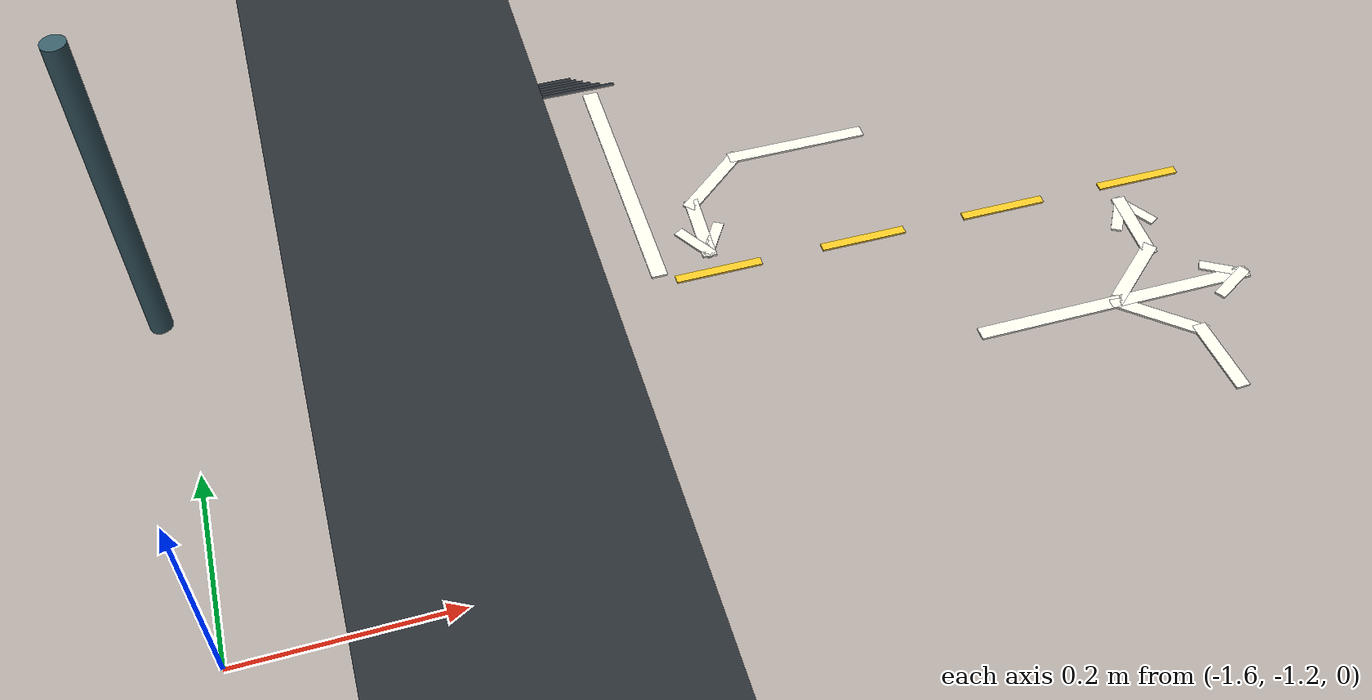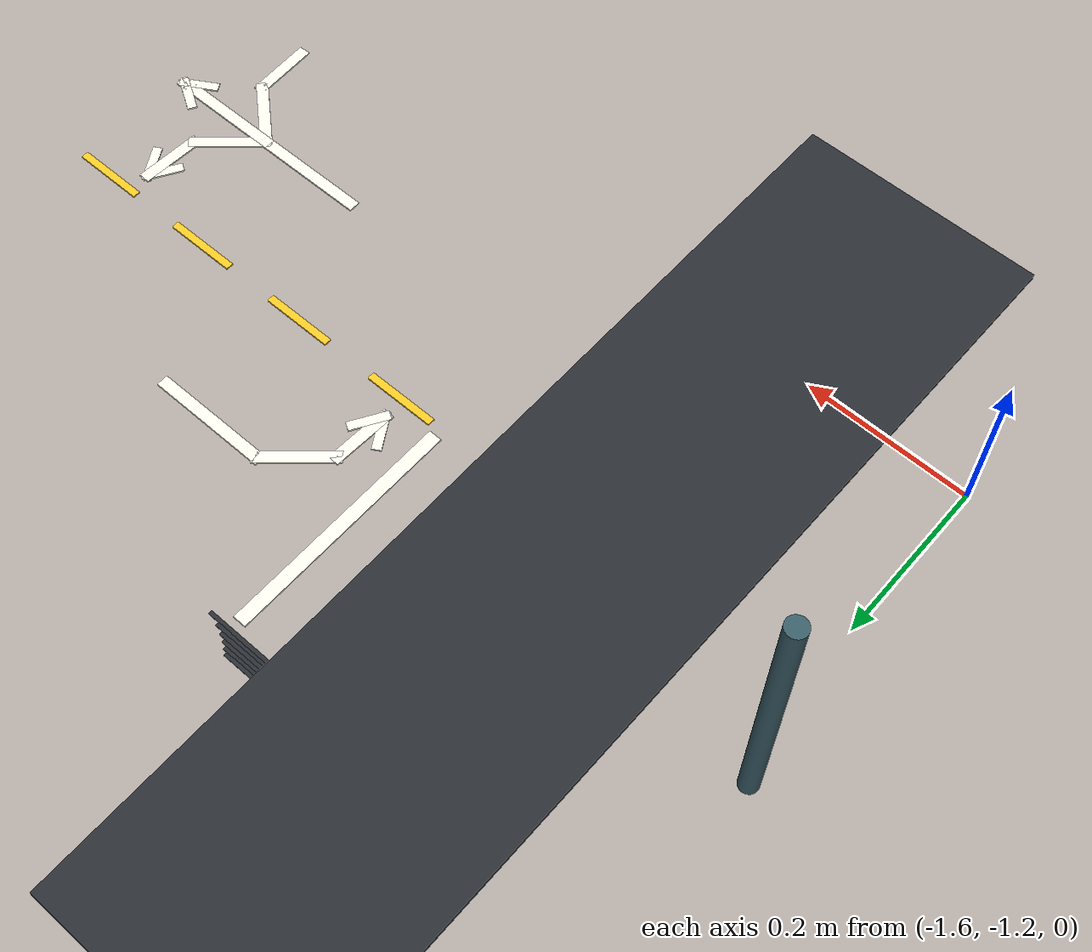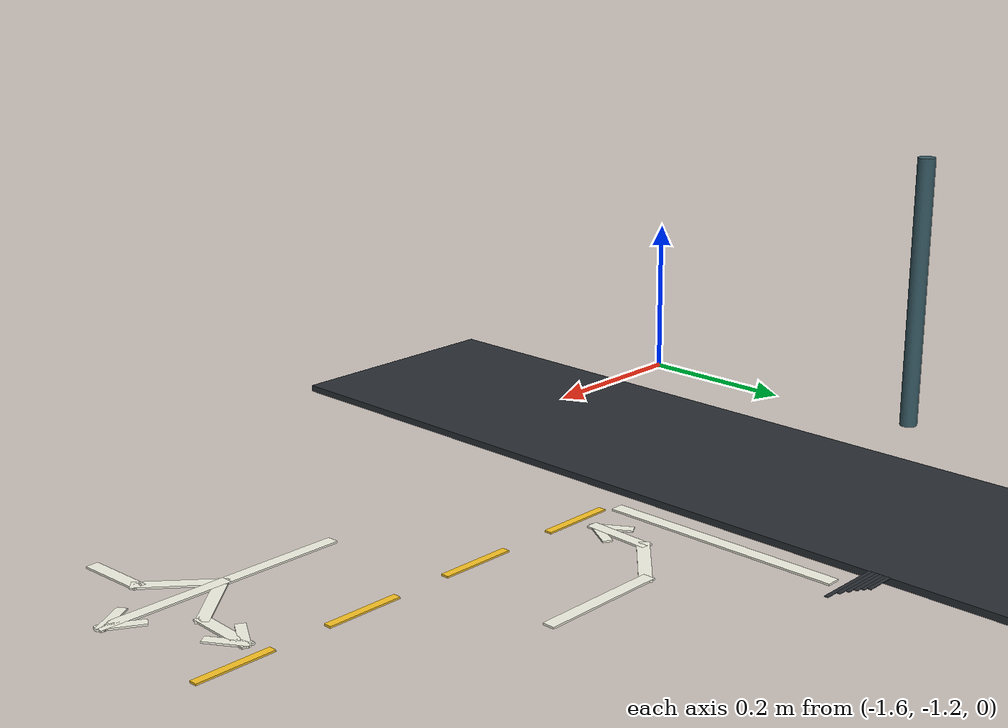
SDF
<sdf version="1.6">
 <world name="sandbox">
  <include><uri>model://sun</uri></include>
  <model name="fence_post_west_3">
   <static>true</static>
   <pose>-1.620000 -0.810000 0.170000 0.000000 0.000000 0.000000</pose>
   <link name="body">
    <collision name="collision">
     <geometry><cylinder><radius>0.011000</radius><length>0.340000</length></cylinder></geometry>
    </collision>
    <visual name="visual">
     <geometry><cylinder><radius>0.011000</radius><length>0.340000</length></cylinder></geometry>
     <material><ambient>0.22 0.36 0.40 1</ambient><diffuse>0.22 0.36 0.40 1</diffuse></material>
    </visual>
   </link>
  </model>
  <model name="outer_left_flat">
   <static>true</static>
   <pose>-1.350000 -0.637500 0.000000 0.000000 -0.000000 1.570796</pose>
   <link name="body">
    <visual name="visual">
     <geometry><box><size>3.087000 0.300000 0.008000</size></box></geometry>
     <material><ambient>0.16 0.18 0.20 1</ambient><diffuse>0.16 0.18 0.20 1</diffuse></material>
    </visual>
   </link>
  </model>
  <model name="outer_junction_-1.2_-0.5999999999999999_00">
   <static>true</static>
   <pose>-1.160153 -0.597917 0.004350 0.000000 0.000000 0.000000</pose>
   <link name="body">
    <visual name="visual">
     <geometry><box><size>0.079694 0.004667 0.000700</size></box></geometry>
     <material><ambient>0.16 0.18 0.20 1</ambient><diffuse>0.16 0.18 0.20 1</diffuse></material>
    </visual>
   </link>
  </model>
  <model name="outer_junction_-1.2_-0.5999999999999999_01">
   <static>true</static>
   <pose>-1.167399 -0.593750 0.004350 0.000000 0.000000 0.000000</pose>
   <link name="body">
    <visual name="visual">
     <geometry><box><size>0.065201 0.004667 0.000700</size></box></geometry>
     <material><ambient>0.16 0.18 0.20 1</ambient><diffuse>0.16 0.18 0.20 1</diffuse></material>
    </visual>
   </link>
  </model>
  <model name="outer_junction_-1.2_-0.5999999999999999_02">
   <static>true</static>
   <pose>-1.172220 -0.589583 0.004350 0.000000 0.000000 0.000000</pose>
   <link name="body">
    <visual name="visual">
     <geometry><box><size>0.055561 0.004667 0.000700</size></box></geometry>
     <material><ambient>0.16 0.18 0.20 1</ambient><diffuse>0.16 0.18 0.20 1</diffuse></material>
    </visual>
   </link>
  </model>
  <model name="outer_junction_-1.2_-0.5999999999999999_03">
   <static>true</static>
   <pose>-1.176000 -0.585417 0.004350 0.000000 0.000000 0.000000</pose>
   <link name="body">
    <visual name="visual">
     <geometry><box><size>0.048000 0.004667 0.000700</size></box></geometry>
     <material><ambient>0.16 0.18 0.20 1</ambient><diffuse>0.16 0.18 0.20 1</diffuse></material>
    </visual>
   </link>
  </model>
  <model name="outer_junction_-1.2_-0.5999999999999999_04">
   <static>true</static>
   <pose>-1.179148 -0.581250 0.004350 0.000000 0.000000 0.000000</pose>
   <link name="body">
    <visual name="visual">
     <geometry><box><size>0.041704 0.004667 0.000700</size></box></geometry>
     <material><ambient>0.16 0.18 0.20 1</ambient><diffuse>0.16 0.18 0.20 1</diffuse></material>
    </visual>
   </link>
  </model>
  <model name="outer_junction_-1.2_-0.5999999999999999_05">
   <static>true</static>
   <pose>-1.181852 -0.577083 0.004350 0.000000 0.000000 0.000000</pose>
   <link name="body">
    <visual name="visual">
     <geometry><box><size>0.036296 0.004667 0.000700</size></box></geometry>
     <material><ambient>0.16 0.18 0.20 1</ambient><diffuse>0.16 0.18 0.20 1</diffuse></material>
    </visual>
   </link>
  </model>
  <model name="horiz_center_0">
   <static>true</static>
   <pose>-1.092500 -0.900000 0.006000 0.000000 -0.000000 0.000000</pose>
   <link name="body">
    <visual name="visual">
     <geometry><box><size>0.087000 0.009000 0.002000</size></box></geometry>
     <material><ambient>0.98 0.77 0.14 1</ambient><diffuse>0.98 0.77 0.14 1</diffuse></material>
    </visual>
   </link>
  </model>
  <model name="horiz_center_1">
   <static>true</static>
   <pose>-0.942500 -0.900000 0.006000 0.000000 -0.000000 0.000000</pose>
   <link name="body">
    <visual name="visual">
     <geometry><box><size>0.087000 0.009000 0.002000</size></box></geometry>
     <material><ambient>0.98 0.77 0.14 1</ambient><diffuse>0.98 0.77 0.14 1</diffuse></material>
    </visual>
   </link>
  </model>
  <model name="horiz_center_2">
   <static>true</static>
   <pose>-0.792500 -0.900000 0.006000 0.000000 -0.000000 0.000000</pose>
   <link name="body">
    <visual name="visual">
     <geometry><box><size>0.087000 0.009000 0.002000</size></box></geometry>
     <material><ambient>0.98 0.77 0.14 1</ambient><diffuse>0.98 0.77 0.14 1</diffuse></material>
    </visual>
   </link>
  </model>
  <model name="horiz_center_3">
   <static>true</static>
   <pose>-0.642500 -0.900000 0.006000 0.000000 -0.000000 0.000000</pose>
   <link name="body">
    <visual name="visual">
     <geometry><box><size>0.087000 0.009000 0.002000</size></box></geometry>
     <material><ambient>0.98 0.77 0.14 1</ambient><diffuse>0.98 0.77 0.14 1</diffuse></material>
    </visual>
   </link>
  </model>
  <model name="cross_from_west_stem">
   <static>true</static>
   <pose>-0.807500 -1.050000 0.006000 0.000000 -0.000000 0.000000</pose>
   <link name="body">
    <visual name="visual">
     <geometry><box><size>0.147000 0.014000 0.002000</size></box></geometry>
     <material><ambient>0.96 0.96 0.90 1</ambient><diffuse>0.96 0.96 0.90 1</diffuse></material>
    </visual>
   </link>
  </model>
  <model name="cross_from_west_straight">
   <static>true</static>
   <pose>-0.672500 -1.050000 0.006000 0.000000 -0.000000 0.000000</pose>
   <link name="body">
    <visual name="visual">
     <geometry><box><size>0.147000 0.014000 0.002000</size></box></geometry>
     <material><ambient>0.96 0.96 0.90 1</ambient><diffuse>0.96 0.96 0.90 1</diffuse></material>
    </visual>
   </link>
  </model>
  <model name="cross_from_west_straight_head_-1">
   <static>true</static>
   <pose>-0.620000 -1.059000 0.006000 0.000000 -0.000000 0.540420</pose>
   <link name="body">
    <visual name="visual">
     <geometry><box><size>0.046986 0.011000 0.002000</size></box></geometry>
     <material><ambient>0.96 0.96 0.90 1</ambient><diffuse>0.96 0.96 0.90 1</diffuse></material>
    </visual>
   </link>
  </model>
  <model name="cross_from_west_straight_head_1">
   <static>true</static>
   <pose>-0.620000 -1.041000 0.006000 0.000000 -0.000000 -0.540420</pose>
   <link name="body">
    <visual name="visual">
     <geometry><box><size>0.046986 0.011000 0.002000</size></box></geometry>
     <material><ambient>0.96 0.96 0.90 1</ambient><diffuse>0.96 0.96 0.90 1</diffuse></material>
    </visual>
   </link>
  </model>
  <model name="cross_from_west_left_branch">
   <static>true</static>
   <pose>-0.709000 -1.022500 0.006000 0.000000 -0.000000 0.725640</pose>
   <link name="body">
    <visual name="visual">
     <geometry><box><size>0.094879 0.014000 0.002000</size></box></geometry>
     <material><ambient>0.96 0.96 0.90 1</ambient><diffuse>0.96 0.96 0.90 1</diffuse></material>
    </visual>
   </link>
  </model>
  <model name="cross_from_west_left_turn">
   <static>true</static>
   <pose>-0.676500 -0.961000 0.006000 0.000000 -0.000000 1.526707</pose>
   <link name="body">
    <visual name="visual">
     <geometry><box><size>0.080066 0.014000 0.002000</size></box></geometry>
     <material><ambient>0.96 0.96 0.90 1</ambient><diffuse>0.96 0.96 0.90 1</diffuse></material>
    </visual>
   </link>
  </model>
  <model name="cross_from_west_left_head_-1">
   <static>true</static>
   <pose>-0.666000 -0.942000 0.006000 0.000000 -0.000000 2.111216</pose>
   <link name="body">
    <visual name="visual">
     <geometry><box><size>0.046986 0.011000 0.002000</size></box></geometry>
     <material><ambient>0.96 0.96 0.90 1</ambient><diffuse>0.96 0.96 0.90 1</diffuse></material>
    </visual>
   </link>
  </model>
  <model name="cross_from_west_left_head_1">
   <static>true</static>
   <pose>-0.684000 -0.942000 0.006000 0.000000 -0.000000 1.030377</pose>
   <link name="body">
    <visual name="visual">
     <geometry><box><size>0.046986 0.011000 0.002000</size></box></geometry>
     <material><ambient>0.96 0.96 0.90 1</ambient><diffuse>0.96 0.96 0.90 1</diffuse></material>
    </visual>
   </link>
  </model>
  <model name="cross_from_west_right_branch">
   <static>true</static>
   <pose>-0.709000 -1.077500 0.006000 0.000000 -0.000000 -0.725640</pose>
   <link name="body">
    <visual name="visual">
     <geometry><box><size>0.094879 0.014000 0.002000</size></box></geometry>
     <material><ambient>0.96 0.96 0.90 1</ambient><diffuse>0.96 0.96 0.90 1</diffuse></material>
    </visual>
   </link>
  </model>
  <model name="cross_from_west_right_turn">
   <static>true</static>
   <pose>-0.676500 -1.139000 0.006000 0.000000 -0.000000 -1.526707</pose>
   <link name="body">
    <visual name="visual">
     <geometry><box><size>0.080066 0.014000 0.002000</size></box></geometry>
     <material><ambient>0.96 0.96 0.90 1</ambient><diffuse>0.96 0.96 0.90 1</diffuse></material>
    </visual>
   </link>
  </model>
  <model name="cross_exit_west_stem">
   <static>true</static>
   <pose>-0.962500 -0.750000 0.006000 0.000000 -0.000000 3.141593</pose>
   <link name="body">
    <visual name="visual">
     <geometry><box><size>0.147000 0.014000 0.002000</size></box></geometry>
     <material><ambient>0.96 0.96 0.90 1</ambient><diffuse>0.96 0.96 0.90 1</diffuse></material>
    </visual>
   </link>
  </model>
  <model name="cross_exit_west_left_branch">
   <static>true</static>
   <pose>-1.061000 -0.777500 0.006000 0.000000 -0.000000 -2.415952</pose>
   <link name="body">
    <visual name="visual">
     <geometry><box><size>0.094879 0.014000 0.002000</size></box></geometry>
     <material><ambient>0.96 0.96 0.90 1</ambient><diffuse>0.96 0.96 0.90 1</diffuse></material>
    </visual>
   </link>
  </model>
  <model name="cross_exit_west_left_turn">
   <static>true</static>
   <pose>-1.093500 -0.839000 0.006000 0.000000 -0.000000 -1.614885</pose>
   <link name="body">
    <visual name="visual">
     <geometry><box><size>0.080066 0.014000 0.002000</size></box></geometry>
     <material><ambient>0.96 0.96 0.90 1</ambient><diffuse>0.96 0.96 0.90 1</diffuse></material>
    </visual>
   </link>
  </model>
  <model name="cross_exit_west_left_head_-1">
   <static>true</static>
   <pose>-1.104000 -0.858000 0.006000 0.000000 -0.000000 -1.030377</pose>
   <link name="body">
    <visual name="visual">
     <geometry><box><size>0.046986 0.011000 0.002000</size></box></geometry>
     <material><ambient>0.96 0.96 0.90 1</ambient><diffuse>0.96 0.96 0.90 1</diffuse></material>
    </visual>
   </link>
  </model>
  <model name="cross_exit_west_left_head_1">
   <static>true</static>
   <pose>-1.086000 -0.858000 0.006000 0.000000 -0.000000 -2.111216</pose>
   <link name="body">
    <visual name="visual">
     <geometry><box><size>0.046986 0.011000 0.002000</size></box></geometry>
     <material><ambient>0.96 0.96 0.90 1</ambient><diffuse>0.96 0.96 0.90 1</diffuse></material>
    </visual>
   </link>
  </model>
  <model name="tstop_outer_west_cross">
   <static>true</static>
   <pose>-1.150000 -0.750000 0.006000 0.000000 -0.000000 1.570796</pose>
   <link name="body">
    <visual name="visual">
     <geometry><box><size>0.282000 0.016000 0.002000</size></box></geometry>
     <material><ambient>0.96 0.96 0.90 1</ambient><diffuse>0.96 0.96 0.90 1</diffuse></material>
    </visual>
   </link>
  </model>
 </world>
</sdf>
